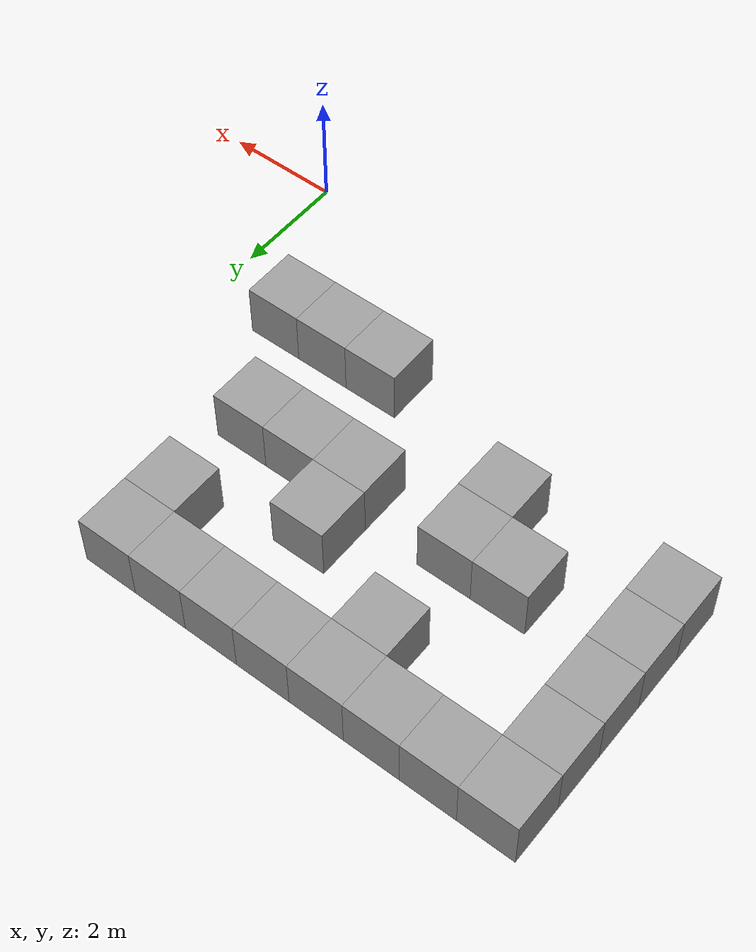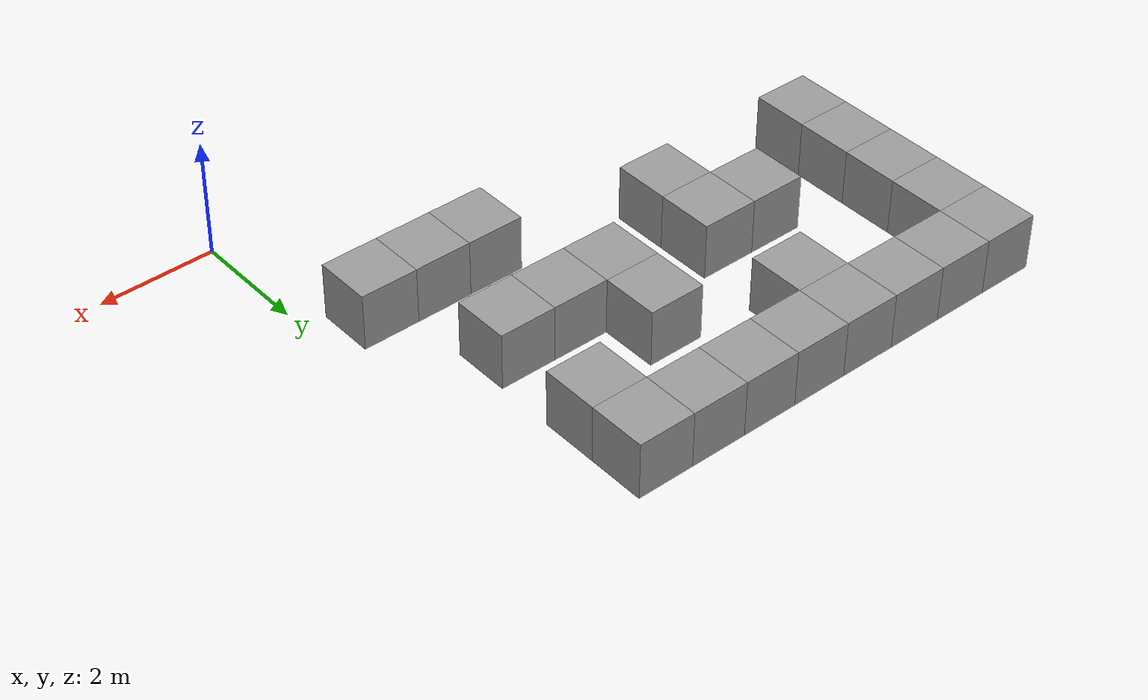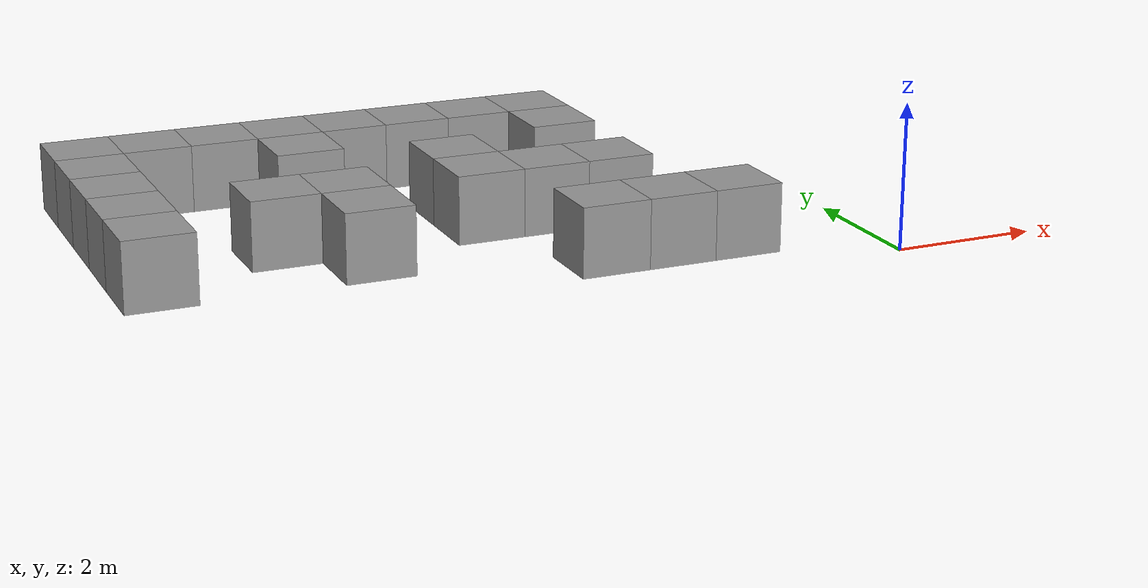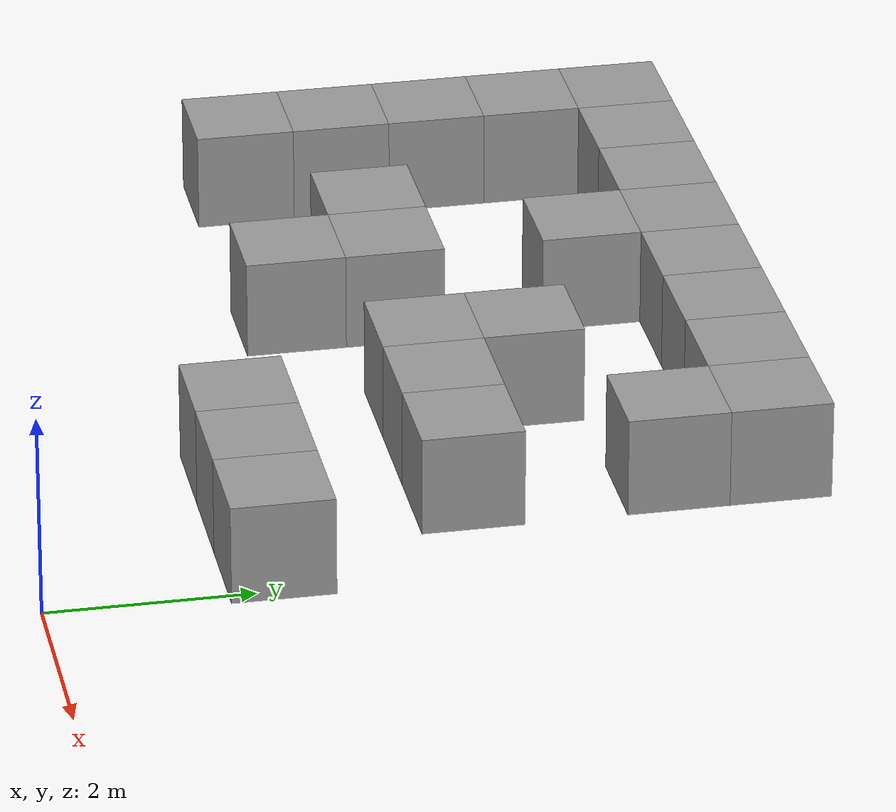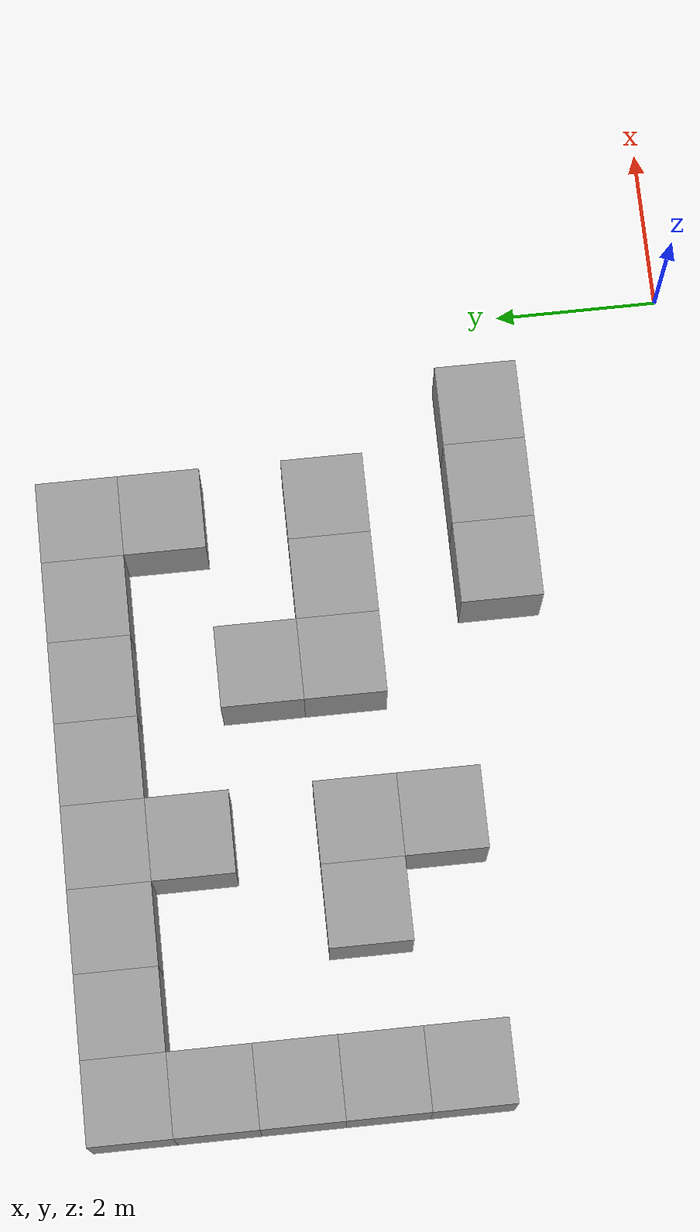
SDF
<sdf version="1.7">
 <model name="maze1">
  <link name="link_1_clone_10">
   <inertial>
    <mass>1</mass>
    <inertia>
     <ixx>0.166667</ixx>
     <ixy>0</ixy>
     <ixz>0</ixz>
     <iyy>0.166667</iyy>
     <iyz>0</iyz>
     <izz>0.166667</izz>
    </inertia>
   </inertial>
   <pose>-2.24618 7.37465 0 0 -0 0</pose>
   <visual name="visual">
    <geometry><box><size>1 1 1</size></box></geometry>
    <material>
     <lighting>1</lighting>
     <script><uri>file://media/materials/scripts/gazebo.material</uri><name>Gazebo/Grey</name></script>
     <shader type="pixel"><normal_map>__default__</normal_map></shader>
     <ambient>0.3 0.3 0.3 1</ambient>
     <diffuse>0.7 0.7 0.7 1</diffuse>
     <specular>0.01 0.01 0.01 1</specular>
     <emissive>0 0 0 1</emissive>
    </material>
   </visual>
   <collision name="collision">
    <geometry><box><size>1 1 1</size></box></geometry>
    <surface>
     <friction>
      <ode><mu>1</mu><mu2>1</mu2><fdir1>0 0 0</fdir1><slip1>0</slip1><slip2>0</slip2></ode>
      <torsional>
       <coefficient>1</coefficient>
       <patch_radius>0</patch_radius>
       <surface_radius>0</surface_radius>
       <use_patch_radius>1</use_patch_radius>
       <ode><slip>0</slip></ode>
      </torsional>
     </friction>
     <bounce><restitution_coefficient>0</restitution_coefficient><threshold>1e+06</threshold></bounce>
     <contact>
      <collide_without_contact>0</collide_without_contact>
      <collide_without_contact_bitmask>1</collide_without_contact_bitmask>
      <collide_bitmask>1</collide_bitmask>
      <ode>
       <soft_cfm>0</soft_cfm>
       <soft_erp>0.2</soft_erp>
       <kp>1e+13</kp>
       <kd>1</kd>
       <max_vel>0.01</max_vel>
       <min_depth>0</min_depth>
      </ode>
      <bullet>
       <split_impulse>1</split_impulse>
       <split_impulse_penetration_threshold>-0.01</split_impulse_penetration_threshold>
       <soft_cfm>0</soft_cfm>
       <soft_erp>0.2</soft_erp>
       <kp>1e+13</kp>
       <kd>1</kd>
      </bullet>
     </contact>
    </surface>
   </collision>
  </link>
  <link name="link_1_clone_100">
   <inertial>
    <mass>1</mass>
    <inertia>
     <ixx>0.166667</ixx>
     <ixy>0</ixy>
     <ixz>0</ixz>
     <iyy>0.166667</iyy>
     <iyz>0</iyz>
     <izz>0.166667</izz>
    </inertia>
   </inertial>
   <pose>-6.24618 4.37465 -0 0 -0 0</pose>
   <visual name="visual">
    <geometry><box><size>1 1 1</size></box></geometry>
    <material>
     <lighting>1</lighting>
     <script><uri>file://media/materials/scripts/gazebo.material</uri><name>Gazebo/Grey</name></script>
     <shader type="pixel"><normal_map>__default__</normal_map></shader>
     <ambient>0.3 0.3 0.3 1</ambient>
     <diffuse>0.7 0.7 0.7 1</diffuse>
     <specular>0.01 0.01 0.01 1</specular>
     <emissive>0 0 0 1</emissive>
    </material>
   </visual>
   <collision name="collision">
    <geometry><box><size>1 1 1</size></box></geometry>
    <surface>
     <friction>
      <ode><mu>1</mu><mu2>1</mu2><fdir1>0 0 0</fdir1><slip1>0</slip1><slip2>0</slip2></ode>
      <torsional>
       <coefficient>1</coefficient>
       <patch_radius>0</patch_radius>
       <surface_radius>0</surface_radius>
       <use_patch_radius>1</use_patch_radius>
       <ode><slip>0</slip></ode>
      </torsional>
     </friction>
     <bounce><restitution_coefficient>0</restitution_coefficient><threshold>1e+06</threshold></bounce>
     <contact>
      <collide_without_contact>0</collide_without_contact>
      <collide_without_contact_bitmask>1</collide_without_contact_bitmask>
      <collide_bitmask>1</collide_bitmask>
      <ode>
       <soft_cfm>0</soft_cfm>
       <soft_erp>0.2</soft_erp>
       <kp>1e+13</kp>
       <kd>1</kd>
       <max_vel>0.01</max_vel>
       <min_depth>0</min_depth>
      </ode>
      <bullet>
       <split_impulse>1</split_impulse>
       <split_impulse_penetration_threshold>-0.01</split_impulse_penetration_threshold>
       <soft_cfm>0</soft_cfm>
       <soft_erp>0.2</soft_erp>
       <kp>1e+13</kp>
       <kd>1</kd>
      </bullet>
     </contact>
    </surface>
   </collision>
  </link>
  <link name="link_1_clone_101">
   <inertial>
    <mass>1</mass>
    <inertia>
     <ixx>0.166667</ixx>
     <ixy>0</ixy>
     <ixz>0</ixz>
     <iyy>0.166667</iyy>
     <iyz>0</iyz>
     <izz>0.166667</izz>
    </inertia>
   </inertial>
   <pose>-6.24618 3.37465 -0 0 -0 0</pose>
   <visual name="visual">
    <geometry><box><size>1 1 1</size></box></geometry>
    <material>
     <lighting>1</lighting>
     <script><uri>file://media/materials/scripts/gazebo.material</uri><name>Gazebo/Grey</name></script>
     <shader type="pixel"><normal_map>__default__</normal_map></shader>
     <ambient>0.3 0.3 0.3 1</ambient>
     <diffuse>0.7 0.7 0.7 1</diffuse>
     <specular>0.01 0.01 0.01 1</specular>
     <emissive>0 0 0 1</emissive>
    </material>
   </visual>
   <collision name="collision">
    <geometry><box><size>1 1 1</size></box></geometry>
    <surface>
     <friction>
      <ode><mu>1</mu><mu2>1</mu2><fdir1>0 0 0</fdir1><slip1>0</slip1><slip2>0</slip2></ode>
      <torsional>
       <coefficient>1</coefficient>
       <patch_radius>0</patch_radius>
       <surface_radius>0</surface_radius>
       <use_patch_radius>1</use_patch_radius>
       <ode><slip>0</slip></ode>
      </torsional>
     </friction>
     <bounce><restitution_coefficient>0</restitution_coefficient><threshold>1e+06</threshold></bounce>
     <contact>
      <collide_without_contact>0</collide_without_contact>
      <collide_without_contact_bitmask>1</collide_without_contact_bitmask>
      <collide_bitmask>1</collide_bitmask>
      <ode>
       <soft_cfm>0</soft_cfm>
       <soft_erp>0.2</soft_erp>
       <kp>1e+13</kp>
       <kd>1</kd>
       <max_vel>0.01</max_vel>
       <min_depth>0</min_depth>
      </ode>
      <bullet>
       <split_impulse>1</split_impulse>
       <split_impulse_penetration_threshold>-0.01</split_impulse_penetration_threshold>
       <soft_cfm>0</soft_cfm>
       <soft_erp>0.2</soft_erp>
       <kp>1e+13</kp>
       <kd>1</kd>
      </bullet>
     </contact>
    </surface>
   </collision>
  </link>
  <link name="link_1_clone_102">
   <inertial>
    <mass>1</mass>
    <inertia>
     <ixx>0.166667</ixx>
     <ixy>0</ixy>
     <ixz>0</ixz>
     <iyy>0.166667</iyy>
     <iyz>0</iyz>
     <izz>0.166667</izz>
    </inertia>
   </inertial>
   <pose>-2.24618 2.37465 -0 0 -0 0</pose>
   <visual name="visual">
    <geometry><box><size>1 1 1</size></box></geometry>
    <material>
     <lighting>1</lighting>
     <script><uri>file://media/materials/scripts/gazebo.material</uri><name>Gazebo/Grey</name></script>
     <shader type="pixel"><normal_map>__default__</normal_map></shader>
     <ambient>0.3 0.3 0.3 1</ambient>
     <diffuse>0.7 0.7 0.7 1</diffuse>
     <specular>0.01 0.01 0.01 1</specular>
     <emissive>0 0 0 1</emissive>
    </material>
   </visual>
   <collision name="collision">
    <geometry><box><size>1 1 1</size></box></geometry>
    <surface>
     <friction>
      <ode><mu>1</mu><mu2>1</mu2><fdir1>0 0 0</fdir1><slip1>0</slip1><slip2>0</slip2></ode>
      <torsional>
       <coefficient>1</coefficient>
       <patch_radius>0</patch_radius>
       <surface_radius>0</surface_radius>
       <use_patch_radius>1</use_patch_radius>
       <ode><slip>0</slip></ode>
      </torsional>
     </friction>
     <bounce><restitution_coefficient>0</restitution_coefficient><threshold>1e+06</threshold></bounce>
     <contact>
      <collide_without_contact>0</collide_without_contact>
      <collide_without_contact_bitmask>1</collide_without_contact_bitmask>
      <collide_bitmask>1</collide_bitmask>
      <ode>
       <soft_cfm>0</soft_cfm>
       <soft_erp>0.2</soft_erp>
       <kp>1e+13</kp>
       <kd>1</kd>
       <max_vel>0.01</max_vel>
       <min_depth>0</min_depth>
      </ode>
      <bullet>
       <split_impulse>1</split_impulse>
       <split_impulse_penetration_threshold>-0.01</split_impulse_penetration_threshold>
       <soft_cfm>0</soft_cfm>
       <soft_erp>0.2</soft_erp>
       <kp>1e+13</kp>
       <kd>1</kd>
      </bullet>
     </contact>
    </surface>
   </collision>
  </link>
  <link name="link_1_clone_103">
   <inertial>
    <mass>1</mass>
    <inertia>
     <ixx>0.166667</ixx>
     <ixy>0</ixy>
     <ixz>0</ixz>
     <iyy>0.166667</iyy>
     <iyz>0</iyz>
     <izz>0.166667</izz>
    </inertia>
   </inertial>
   <pose>-1.24618 2.37465 -0 0 -0 0</pose>
   <visual name="visual">
    <geometry><box><size>1 1 1</size></box></geometry>
    <material>
     <lighting>1</lighting>
     <script><uri>file://media/materials/scripts/gazebo.material</uri><name>Gazebo/Grey</name></script>
     <shader type="pixel"><normal_map>__default__</normal_map></shader>
     <ambient>0.3 0.3 0.3 1</ambient>
     <diffuse>0.7 0.7 0.7 1</diffuse>
     <specular>0.01 0.01 0.01 1</specular>
     <emissive>0 0 0 1</emissive>
    </material>
   </visual>
   <collision name="collision">
    <geometry><box><size>1 1 1</size></box></geometry>
    <surface>
     <friction>
      <ode><mu>1</mu><mu2>1</mu2><fdir1>0 0 0</fdir1><slip1>0</slip1><slip2>0</slip2></ode>
      <torsional>
       <coefficient>1</coefficient>
       <patch_radius>0</patch_radius>
       <surface_radius>0</surface_radius>
       <use_patch_radius>1</use_patch_radius>
       <ode><slip>0</slip></ode>
      </torsional>
     </friction>
     <bounce><restitution_coefficient>0</restitution_coefficient><threshold>1e+06</threshold></bounce>
     <contact>
      <collide_without_contact>0</collide_without_contact>
      <collide_without_contact_bitmask>1</collide_without_contact_bitmask>
      <collide_bitmask>1</collide_bitmask>
      <ode>
       <soft_cfm>0</soft_cfm>
       <soft_erp>0.2</soft_erp>
       <kp>1e+13</kp>
       <kd>1</kd>
       <max_vel>0.01</max_vel>
       <min_depth>0</min_depth>
      </ode>
      <bullet>
       <split_impulse>1</split_impulse>
       <split_impulse_penetration_threshold>-0.01</split_impulse_penetration_threshold>
       <soft_cfm>0</soft_cfm>
       <soft_erp>0.2</soft_erp>
       <kp>1e+13</kp>
       <kd>1</kd>
      </bullet>
     </contact>
    </surface>
   </collision>
  </link>
  <link name="link_1_clone_11">
   <inertial>
    <mass>1</mass>
    <inertia>
     <ixx>0.166667</ixx>
     <ixy>0</ixy>
     <ixz>0</ixz>
     <iyy>0.166667</iyy>
     <iyz>0</iyz>
     <izz>0.166667</izz>
    </inertia>
   </inertial>
   <pose>-3.24618 7.37465 -0 0 -0 0</pose>
   <visual name="visual">
    <geometry><box><size>1 1 1</size></box></geometry>
    <material>
     <lighting>1</lighting>
     <script><uri>file://media/materials/scripts/gazebo.material</uri><name>Gazebo/Grey</name></script>
     <shader type="pixel"><normal_map>__default__</normal_map></shader>
     <ambient>0.3 0.3 0.3 1</ambient>
     <diffuse>0.7 0.7 0.7 1</diffuse>
     <specular>0.01 0.01 0.01 1</specular>
     <emissive>0 0 0 1</emissive>
    </material>
   </visual>
   <collision name="collision">
    <geometry><box><size>1 1 1</size></box></geometry>
    <surface>
     <friction>
      <ode><mu>1</mu><mu2>1</mu2><fdir1>0 0 0</fdir1><slip1>0</slip1><slip2>0</slip2></ode>
      <torsional>
       <coefficient>1</coefficient>
       <patch_radius>0</patch_radius>
       <surface_radius>0</surface_radius>
       <use_patch_radius>1</use_patch_radius>
       <ode><slip>0</slip></ode>
      </torsional>
     </friction>
     <bounce><restitution_coefficient>0</restitution_coefficient><threshold>1e+06</threshold></bounce>
     <contact>
      <collide_without_contact>0</collide_without_contact>
      <collide_without_contact_bitmask>1</collide_without_contact_bitmask>
      <collide_bitmask>1</collide_bitmask>
      <ode>
       <soft_cfm>0</soft_cfm>
       <soft_erp>0.2</soft_erp>
       <kp>1e+13</kp>
       <kd>1</kd>
       <max_vel>0.01</max_vel>
       <min_depth>0</min_depth>
      </ode>
      <bullet>
       <split_impulse>1</split_impulse>
       <split_impulse_penetration_threshold>-0.01</split_impulse_penetration_threshold>
       <soft_cfm>0</soft_cfm>
       <soft_erp>0.2</soft_erp>
       <kp>1e+13</kp>
       <kd>1</kd>
      </bullet>
     </contact>
    </surface>
   </collision>
  </link>
  <link name="link_1_clone_114">
   <inertial>
    <mass>1</mass>
    <inertia>
     <ixx>0.166667</ixx>
     <ixy>0</ixy>
     <ixz>0</ixz>
     <iyy>0.166667</iyy>
     <iyz>0</iyz>
     <izz>0.166667</izz>
    </inertia>
   </inertial>
   <pose>-3.24618 2.37465 -0 0 -0 0</pose>
   <visual name="visual">
    <geometry><box><size>1 1 1</size></box></geometry>
    <material>
     <lighting>1</lighting>
     <script><uri>file://media/materials/scripts/gazebo.material</uri><name>Gazebo/Grey</name></script>
     <shader type="pixel"><normal_map>__default__</normal_map></shader>
     <ambient>0.3 0.3 0.3 1</ambient>
     <diffuse>0.7 0.7 0.7 1</diffuse>
     <specular>0.01 0.01 0.01 1</specular>
     <emissive>0 0 0 1</emissive>
    </material>
   </visual>
   <collision name="collision">
    <geometry><box><size>1 1 1</size></box></geometry>
    <surface>
     <friction>
      <ode><mu>1</mu><mu2>1</mu2><fdir1>0 0 0</fdir1><slip1>0</slip1><slip2>0</slip2></ode>
      <torsional>
       <coefficient>1</coefficient>
       <patch_radius>0</patch_radius>
       <surface_radius>0</surface_radius>
       <use_patch_radius>1</use_patch_radius>
       <ode><slip>0</slip></ode>
      </torsional>
     </friction>
     <bounce><restitution_coefficient>0</restitution_coefficient><threshold>1e+06</threshold></bounce>
     <contact>
      <collide_without_contact>0</collide_without_contact>
      <collide_without_contact_bitmask>1</collide_without_contact_bitmask>
      <collide_bitmask>1</collide_bitmask>
      <ode>
       <soft_cfm>0</soft_cfm>
       <soft_erp>0.2</soft_erp>
       <kp>1e+13</kp>
       <kd>1</kd>
       <max_vel>0.01</max_vel>
       <min_depth>0</min_depth>
      </ode>
      <bullet>
       <split_impulse>1</split_impulse>
       <split_impulse_penetration_threshold>-0.01</split_impulse_penetration_threshold>
       <soft_cfm>0</soft_cfm>
       <soft_erp>0.2</soft_erp>
       <kp>1e+13</kp>
       <kd>1</kd>
      </bullet>
     </contact>
    </surface>
   </collision>
  </link>
  <link name="link_1_clone_12">
   <inertial>
    <mass>1</mass>
    <inertia>
     <ixx>0.166667</ixx>
     <ixy>0</ixy>
     <ixz>0</ixz>
     <iyy>0.166667</iyy>
     <iyz>0</iyz>
     <izz>0.166667</izz>
    </inertia>
   </inertial>
   <pose>-4.24618 7.37465 -0 0 -0 0</pose>
   <visual name="visual">
    <geometry><box><size>1 1 1</size></box></geometry>
    <material>
     <lighting>1</lighting>
     <script><uri>file://media/materials/scripts/gazebo.material</uri><name>Gazebo/Grey</name></script>
     <shader type="pixel"><normal_map>__default__</normal_map></shader>
     <ambient>0.3 0.3 0.3 1</ambient>
     <diffuse>0.7 0.7 0.7 1</diffuse>
     <specular>0.01 0.01 0.01 1</specular>
     <emissive>0 0 0 1</emissive>
    </material>
   </visual>
   <collision name="collision">
    <geometry><box><size>1 1 1</size></box></geometry>
    <surface>
     <friction>
      <ode><mu>1</mu><mu2>1</mu2><fdir1>0 0 0</fdir1><slip1>0</slip1><slip2>0</slip2></ode>
      <torsional>
       <coefficient>1</coefficient>
       <patch_radius>0</patch_radius>
       <surface_radius>0</surface_radius>
       <use_patch_radius>1</use_patch_radius>
       <ode><slip>0</slip></ode>
      </torsional>
     </friction>
     <bounce><restitution_coefficient>0</restitution_coefficient><threshold>1e+06</threshold></bounce>
     <contact>
      <collide_without_contact>0</collide_without_contact>
      <collide_without_contact_bitmask>1</collide_without_contact_bitmask>
      <collide_bitmask>1</collide_bitmask>
      <ode>
       <soft_cfm>0</soft_cfm>
       <soft_erp>0.2</soft_erp>
       <kp>1e+13</kp>
       <kd>1</kd>
       <max_vel>0.01</max_vel>
       <min_depth>0</min_depth>
      </ode>
      <bullet>
       <split_impulse>1</split_impulse>
       <split_impulse_penetration_threshold>-0.01</split_impulse_penetration_threshold>
       <soft_cfm>0</soft_cfm>
       <soft_erp>0.2</soft_erp>
       <kp>1e+13</kp>
       <kd>1</kd>
      </bullet>
     </contact>
    </surface>
   </collision>
  </link>
  <link name="link_1_clone_13">
   <inertial>
    <mass>1</mass>
    <inertia>
     <ixx>0.166667</ixx>
     <ixy>0</ixy>
     <ixz>0</ixz>
     <iyy>0.166667</iyy>
     <iyz>0</iyz>
     <izz>0.166667</izz>
    </inertia>
   </inertial>
   <pose>-5.24618 7.37465 -0 0 -0 0</pose>
   <visual name="visual">
    <geometry><box><size>1 1 1</size></box></geometry>
    <material>
     <lighting>1</lighting>
     <script><uri>file://media/materials/scripts/gazebo.material</uri><name>Gazebo/Grey</name></script>
     <shader type="pixel"><normal_map>__default__</normal_map></shader>
     <ambient>0.3 0.3 0.3 1</ambient>
     <diffuse>0.7 0.7 0.7 1</diffuse>
     <specular>0.01 0.01 0.01 1</specular>
     <emissive>0 0 0 1</emissive>
    </material>
   </visual>
   <collision name="collision">
    <geometry><box><size>1 1 1</size></box></geometry>
    <surface>
     <friction>
      <ode><mu>1</mu><mu2>1</mu2><fdir1>0 0 0</fdir1><slip1>0</slip1><slip2>0</slip2></ode>
      <torsional>
       <coefficient>1</coefficient>
       <patch_radius>0</patch_radius>
       <surface_radius>0</surface_radius>
       <use_patch_radius>1</use_patch_radius>
       <ode><slip>0</slip></ode>
      </torsional>
     </friction>
     <bounce><restitution_coefficient>0</restitution_coefficient><threshold>1e+06</threshold></bounce>
     <contact>
      <collide_without_contact>0</collide_without_contact>
      <collide_without_contact_bitmask>1</collide_without_contact_bitmask>
      <collide_bitmask>1</collide_bitmask>
      <ode>
       <soft_cfm>0</soft_cfm>
       <soft_erp>0.2</soft_erp>
       <kp>1e+13</kp>
       <kd>1</kd>
       <max_vel>0.01</max_vel>
       <min_depth>0</min_depth>
      </ode>
      <bullet>
       <split_impulse>1</split_impulse>
       <split_impulse_penetration_threshold>-0.01</split_impulse_penetration_threshold>
       <soft_cfm>0</soft_cfm>
       <soft_erp>0.2</soft_erp>
       <kp>1e+13</kp>
       <kd>1</kd>
      </bullet>
     </contact>
    </surface>
   </collision>
  </link>
  <link name="link_1_clone_14">
   <inertial>
    <mass>1</mass>
    <inertia>
     <ixx>0.166667</ixx>
     <ixy>0</ixy>
     <ixz>0</ixz>
     <iyy>0.166667</iyy>
     <iyz>0</iyz>
     <izz>0.166667</izz>
    </inertia>
   </inertial>
   <pose>-6.24618 7.37465 -0 0 -0 0</pose>
   <visual name="visual">
    <geometry><box><size>1 1 1</size></box></geometry>
    <material>
     <lighting>1</lighting>
     <script><uri>file://media/materials/scripts/gazebo.material</uri><name>Gazebo/Grey</name></script>
     <shader type="pixel"><normal_map>__default__</normal_map></shader>
     <ambient>0.3 0.3 0.3 1</ambient>
     <diffuse>0.7 0.7 0.7 1</diffuse>
     <specular>0.01 0.01 0.01 1</specular>
     <emissive>0 0 0 1</emissive>
    </material>
   </visual>
   <collision name="collision">
    <geometry><box><size>1 1 1</size></box></geometry>
    <surface>
     <friction>
      <ode><mu>1</mu><mu2>1</mu2><fdir1>0 0 0</fdir1><slip1>0</slip1><slip2>0</slip2></ode>
      <torsional>
       <coefficient>1</coefficient>
       <patch_radius>0</patch_radius>
       <surface_radius>0</surface_radius>
       <use_patch_radius>1</use_patch_radius>
       <ode><slip>0</slip></ode>
      </torsional>
     </friction>
     <bounce><restitution_coefficient>0</restitution_coefficient><threshold>1e+06</threshold></bounce>
     <contact>
      <collide_without_contact>0</collide_without_contact>
      <collide_without_contact_bitmask>1</collide_without_contact_bitmask>
      <collide_bitmask>1</collide_bitmask>
      <ode>
       <soft_cfm>0</soft_cfm>
       <soft_erp>0.2</soft_erp>
       <kp>1e+13</kp>
       <kd>1</kd>
       <max_vel>0.01</max_vel>
       <min_depth>0</min_depth>
      </ode>
      <bullet>
       <split_impulse>1</split_impulse>
       <split_impulse_penetration_threshold>-0.01</split_impulse_penetration_threshold>
       <soft_cfm>0</soft_cfm>
       <soft_erp>0.2</soft_erp>
       <kp>1e+13</kp>
       <kd>1</kd>
      </bullet>
     </contact>
    </surface>
   </collision>
  </link>
  <link name="link_1_clone_15">
   <inertial>
    <mass>1</mass>
    <inertia>
     <ixx>0.166667</ixx>
     <ixy>0</ixy>
     <ixz>0</ixz>
     <iyy>0.166667</iyy>
     <iyz>0</iyz>
     <izz>0.166667</izz>
    </inertia>
   </inertial>
   <pose>-7.24618 7.37465 -0 0 -0 0</pose>
   <visual name="visual">
    <geometry><box><size>1 1 1</size></box></geometry>
    <material>
     <lighting>1</lighting>
     <script><uri>file://media/materials/scripts/gazebo.material</uri><name>Gazebo/Grey</name></script>
     <shader type="pixel"><normal_map>__default__</normal_map></shader>
     <ambient>0.3 0.3 0.3 1</ambient>
     <diffuse>0.7 0.7 0.7 1</diffuse>
     <specular>0.01 0.01 0.01 1</specular>
     <emissive>0 0 0 1</emissive>
    </material>
   </visual>
   <collision name="collision">
    <geometry><box><size>1 1 1</size></box></geometry>
    <surface>
     <friction>
      <ode><mu>1</mu><mu2>1</mu2><fdir1>0 0 0</fdir1><slip1>0</slip1><slip2>0</slip2></ode>
      <torsional>
       <coefficient>1</coefficient>
       <patch_radius>0</patch_radius>
       <surface_radius>0</surface_radius>
       <use_patch_radius>1</use_patch_radius>
       <ode><slip>0</slip></ode>
      </torsional>
     </friction>
     <bounce><restitution_coefficient>0</restitution_coefficient><threshold>1e+06</threshold></bounce>
     <contact>
      <collide_without_contact>0</collide_without_contact>
      <collide_without_contact_bitmask>1</collide_without_contact_bitmask>
      <collide_bitmask>1</collide_bitmask>
      <ode>
       <soft_cfm>0</soft_cfm>
       <soft_erp>0.2</soft_erp>
       <kp>1e+13</kp>
       <kd>1</kd>
       <max_vel>0.01</max_vel>
       <min_depth>0</min_depth>
      </ode>
      <bullet>
       <split_impulse>1</split_impulse>
       <split_impulse_penetration_threshold>-0.01</split_impulse_penetration_threshold>
       <soft_cfm>0</soft_cfm>
       <soft_erp>0.2</soft_erp>
       <kp>1e+13</kp>
       <kd>1</kd>
      </bullet>
     </contact>
    </surface>
   </collision>
  </link>
  <link name="link_1_clone_16">
   <inertial>
    <mass>1</mass>
    <inertia>
     <ixx>0.166667</ixx>
     <ixy>0</ixy>
     <ixz>0</ixz>
     <iyy>0.166667</iyy>
     <iyz>0</iyz>
     <izz>0.166667</izz>
    </inertia>
   </inertial>
   <pose>-8.24618 7.37465 -0 0 -0 0</pose>
   <visual name="visual">
    <geometry><box><size>1 1 1</size></box></geometry>
    <material>
     <lighting>1</lighting>
     <script><uri>file://media/materials/scripts/gazebo.material</uri><name>Gazebo/Grey</name></script>
     <shader type="pixel"><normal_map>__default__</normal_map></shader>
     <ambient>0.3 0.3 0.3 1</ambient>
     <diffuse>0.7 0.7 0.7 1</diffuse>
     <specular>0.01 0.01 0.01 1</specular>
     <emissive>0 0 0 1</emissive>
    </material>
   </visual>
   <collision name="collision">
    <geometry><box><size>1 1 1</size></box></geometry>
    <surface>
     <friction>
      <ode><mu>1</mu><mu2>1</mu2><fdir1>0 0 0</fdir1><slip1>0</slip1><slip2>0</slip2></ode>
      <torsional>
       <coefficient>1</coefficient>
       <patch_radius>0</patch_radius>
       <surface_radius>0</surface_radius>
       <use_patch_radius>1</use_patch_radius>
       <ode><slip>0</slip></ode>
      </torsional>
     </friction>
     <bounce><restitution_coefficient>0</restitution_coefficient><threshold>1e+06</threshold></bounce>
     <contact>
      <collide_without_contact>0</collide_without_contact>
      <collide_without_contact_bitmask>1</collide_without_contact_bitmask>
      <collide_bitmask>1</collide_bitmask>
      <ode>
       <soft_cfm>0</soft_cfm>
       <soft_erp>0.2</soft_erp>
       <kp>1e+13</kp>
       <kd>1</kd>
       <max_vel>0.01</max_vel>
       <min_depth>0</min_depth>
      </ode>
      <bullet>
       <split_impulse>1</split_impulse>
       <split_impulse_penetration_threshold>-0.01</split_impulse_penetration_threshold>
       <soft_cfm>0</soft_cfm>
       <soft_erp>0.2</soft_erp>
       <kp>1e+13</kp>
       <kd>1</kd>
      </bullet>
     </contact>
    </surface>
   </collision>
  </link>
  <link name="link_1_clone_17">
   <inertial>
    <mass>1</mass>
    <inertia>
     <ixx>0.166667</ixx>
     <ixy>0</ixy>
     <ixz>0</ixz>
     <iyy>0.166667</iyy>
     <iyz>0</iyz>
     <izz>0.166667</izz>
    </inertia>
   </inertial>
   <pose>-9.24618 7.37465 -0 0 -0 0</pose>
   <visual name="visual">
    <geometry><box><size>1 1 1</size></box></geometry>
    <material>
     <lighting>1</lighting>
     <script><uri>file://media/materials/scripts/gazebo.material</uri><name>Gazebo/Grey</name></script>
     <shader type="pixel"><normal_map>__default__</normal_map></shader>
     <ambient>0.3 0.3 0.3 1</ambient>
     <diffuse>0.7 0.7 0.7 1</diffuse>
     <specular>0.01 0.01 0.01 1</specular>
     <emissive>0 0 0 1</emissive>
    </material>
   </visual>
   <collision name="collision">
    <geometry><box><size>1 1 1</size></box></geometry>
    <surface>
     <friction>
      <ode><mu>1</mu><mu2>1</mu2><fdir1>0 0 0</fdir1><slip1>0</slip1><slip2>0</slip2></ode>
      <torsional>
       <coefficient>1</coefficient>
       <patch_radius>0</patch_radius>
       <surface_radius>0</surface_radius>
       <use_patch_radius>1</use_patch_radius>
       <ode><slip>0</slip></ode>
      </torsional>
     </friction>
     <bounce><restitution_coefficient>0</restitution_coefficient><threshold>1e+06</threshold></bounce>
     <contact>
      <collide_without_contact>0</collide_without_contact>
      <collide_without_contact_bitmask>1</collide_without_contact_bitmask>
      <collide_bitmask>1</collide_bitmask>
      <ode>
       <soft_cfm>0</soft_cfm>
       <soft_erp>0.2</soft_erp>
       <kp>1e+13</kp>
       <kd>1</kd>
       <max_vel>0.01</max_vel>
       <min_depth>0</min_depth>
      </ode>
      <bullet>
       <split_impulse>1</split_impulse>
       <split_impulse_penetration_threshold>-0.01</split_impulse_penetration_threshold>
       <soft_cfm>0</soft_cfm>
       <soft_erp>0.2</soft_erp>
       <kp>1e+13</kp>
       <kd>1</kd>
      </bullet>
     </contact>
    </surface>
   </collision>
  </link>
  <link name="link_1_clone_18">
   <inertial>
    <mass>1</mass>
    <inertia>
     <ixx>0.166667</ixx>
     <ixy>0</ixy>
     <ixz>0</ixz>
     <iyy>0.166667</iyy>
     <iyz>0</iyz>
     <izz>0.166667</izz>
    </inertia>
   </inertial>
   <pose>-9.24618 6.37465 -0 0 -0 0</pose>
   <visual name="visual">
    <geometry><box><size>1 1 1</size></box></geometry>
    <material>
     <lighting>1</lighting>
     <script><uri>file://media/materials/scripts/gazebo.material</uri><name>Gazebo/Grey</name></script>
     <shader type="pixel"><normal_map>__default__</normal_map></shader>
     <ambient>0.3 0.3 0.3 1</ambient>
     <diffuse>0.7 0.7 0.7 1</diffuse>
     <specular>0.01 0.01 0.01 1</specular>
     <emissive>0 0 0 1</emissive>
    </material>
   </visual>
   <collision name="collision">
    <geometry><box><size>1 1 1</size></box></geometry>
    <surface>
     <friction>
      <ode><mu>1</mu><mu2>1</mu2><fdir1>0 0 0</fdir1><slip1>0</slip1><slip2>0</slip2></ode>
      <torsional>
       <coefficient>1</coefficient>
       <patch_radius>0</patch_radius>
       <surface_radius>0</surface_radius>
       <use_patch_radius>1</use_patch_radius>
       <ode><slip>0</slip></ode>
      </torsional>
     </friction>
     <bounce><restitution_coefficient>0</restitution_coefficient><threshold>1e+06</threshold></bounce>
     <contact>
      <collide_without_contact>0</collide_without_contact>
      <collide_without_contact_bitmask>1</collide_without_contact_bitmask>
      <collide_bitmask>1</collide_bitmask>
      <ode>
       <soft_cfm>0</soft_cfm>
       <soft_erp>0.2</soft_erp>
       <kp>1e+13</kp>
       <kd>1</kd>
       <max_vel>0.01</max_vel>
       <min_depth>0</min_depth>
      </ode>
      <bullet>
       <split_impulse>1</split_impulse>
       <split_impulse_penetration_threshold>-0.01</split_impulse_penetration_threshold>
       <soft_cfm>0</soft_cfm>
       <soft_erp>0.2</soft_erp>
       <kp>1e+13</kp>
       <kd>1</kd>
      </bullet>
     </contact>
    </surface>
   </collision>
  </link>
  <link name="link_1_clone_19">
   <inertial>
    <mass>1</mass>
    <inertia>
     <ixx>0.166667</ixx>
     <ixy>0</ixy>
     <ixz>0</ixz>
     <iyy>0.166667</iyy>
     <iyz>0</iyz>
     <izz>0.166667</izz>
    </inertia>
   </inertial>
   <pose>-9.24618 5.37465 -0 0 -0 0</pose>
   <visual name="visual">
    <geometry><box><size>1 1 1</size></box></geometry>
    <material>
     <lighting>1</lighting>
     <script><uri>file://media/materials/scripts/gazebo.material</uri><name>Gazebo/Grey</name></script>
     <shader type="pixel"><normal_map>__default__</normal_map></shader>
     <ambient>0.3 0.3 0.3 1</ambient>
     <diffuse>0.7 0.7 0.7 1</diffuse>
     <specular>0.01 0.01 0.01 1</specular>
     <emissive>0 0 0 1</emissive>
    </material>
   </visual>
   <collision name="collision">
    <geometry><box><size>1 1 1</size></box></geometry>
    <surface>
     <friction>
      <ode><mu>1</mu><mu2>1</mu2><fdir1>0 0 0</fdir1><slip1>0</slip1><slip2>0</slip2></ode>
      <torsional>
       <coefficient>1</coefficient>
       <patch_radius>0</patch_radius>
       <surface_radius>0</surface_radius>
       <use_patch_radius>1</use_patch_radius>
       <ode><slip>0</slip></ode>
      </torsional>
     </friction>
     <bounce><restitution_coefficient>0</restitution_coefficient><threshold>1e+06</threshold></bounce>
     <contact>
      <collide_without_contact>0</collide_without_contact>
      <collide_without_contact_bitmask>1</collide_without_contact_bitmask>
      <collide_bitmask>1</collide_bitmask>
      <ode>
       <soft_cfm>0</soft_cfm>
       <soft_erp>0.2</soft_erp>
       <kp>1e+13</kp>
       <kd>1</kd>
       <max_vel>0.01</max_vel>
       <min_depth>0</min_depth>
      </ode>
      <bullet>
       <split_impulse>1</split_impulse>
       <split_impulse_penetration_threshold>-0.01</split_impulse_penetration_threshold>
       <soft_cfm>0</soft_cfm>
       <soft_erp>0.2</soft_erp>
       <kp>1e+13</kp>
       <kd>1</kd>
      </bullet>
     </contact>
    </surface>
   </collision>
  </link>
  <link name="link_1_clone_20">
   <inertial>
    <mass>1</mass>
    <inertia>
     <ixx>0.166667</ixx>
     <ixy>0</ixy>
     <ixz>0</ixz>
     <iyy>0.166667</iyy>
     <iyz>0</iyz>
     <izz>0.166667</izz>
    </inertia>
   </inertial>
   <pose>-9.24618 4.37465 -0 0 -0 0</pose>
   <visual name="visual">
    <geometry><box><size>1 1 1</size></box></geometry>
    <material>
     <lighting>1</lighting>
     <script><uri>file://media/materials/scripts/gazebo.material</uri><name>Gazebo/Grey</name></script>
     <shader type="pixel"><normal_map>__default__</normal_map></shader>
     <ambient>0.3 0.3 0.3 1</ambient>
     <diffuse>0.7 0.7 0.7 1</diffuse>
     <specular>0.01 0.01 0.01 1</specular>
     <emissive>0 0 0 1</emissive>
    </material>
   </visual>
   <collision name="collision">
    <geometry><box><size>1 1 1</size></box></geometry>
    <surface>
     <friction>
      <ode><mu>1</mu><mu2>1</mu2><fdir1>0 0 0</fdir1><slip1>0</slip1><slip2>0</slip2></ode>
      <torsional>
       <coefficient>1</coefficient>
       <patch_radius>0</patch_radius>
       <surface_radius>0</surface_radius>
       <use_patch_radius>1</use_patch_radius>
       <ode><slip>0</slip></ode>
      </torsional>
     </friction>
     <bounce><restitution_coefficient>0</restitution_coefficient><threshold>1e+06</threshold></bounce>
     <contact>
      <collide_without_contact>0</collide_without_contact>
      <collide_without_contact_bitmask>1</collide_without_contact_bitmask>
      <collide_bitmask>1</collide_bitmask>
      <ode>
       <soft_cfm>0</soft_cfm>
       <soft_erp>0.2</soft_erp>
       <kp>1e+13</kp>
       <kd>1</kd>
       <max_vel>0.01</max_vel>
       <min_depth>0</min_depth>
      </ode>
      <bullet>
       <split_impulse>1</split_impulse>
       <split_impulse_penetration_threshold>-0.01</split_impulse_penetration_threshold>
       <soft_cfm>0</soft_cfm>
       <soft_erp>0.2</soft_erp>
       <kp>1e+13</kp>
       <kd>1</kd>
      </bullet>
     </contact>
    </surface>
   </collision>
  </link>
  <link name="link_1_clone_21">
   <inertial>
    <mass>1</mass>
    <inertia>
     <ixx>0.166667</ixx>
     <ixy>0</ixy>
     <ixz>0</ixz>
     <iyy>0.166667</iyy>
     <iyz>0</iyz>
     <izz>0.166667</izz>
    </inertia>
   </inertial>
   <pose>-9.24618 3.37465 -0 0 -0 0</pose>
   <visual name="visual">
    <geometry><box><size>1 1 1</size></box></geometry>
    <material>
     <lighting>1</lighting>
     <script><uri>file://media/materials/scripts/gazebo.material</uri><name>Gazebo/Grey</name></script>
     <shader type="pixel"><normal_map>__default__</normal_map></shader>
     <ambient>0.3 0.3 0.3 1</ambient>
     <diffuse>0.7 0.7 0.7 1</diffuse>
     <specular>0.01 0.01 0.01 1</specular>
     <emissive>0 0 0 1</emissive>
    </material>
   </visual>
   <collision name="collision">
    <geometry><box><size>1 1 1</size></box></geometry>
    <surface>
     <friction>
      <ode><mu>1</mu><mu2>1</mu2><fdir1>0 0 0</fdir1><slip1>0</slip1><slip2>0</slip2></ode>
      <torsional>
       <coefficient>1</coefficient>
       <patch_radius>0</patch_radius>
       <surface_radius>0</surface_radius>
       <use_patch_radius>1</use_patch_radius>
       <ode><slip>0</slip></ode>
      </torsional>
     </friction>
     <bounce><restitution_coefficient>0</restitution_coefficient><threshold>1e+06</threshold></bounce>
     <contact>
      <collide_without_contact>0</collide_without_contact>
      <collide_without_contact_bitmask>1</collide_without_contact_bitmask>
      <collide_bitmask>1</collide_bitmask>
      <ode>
       <soft_cfm>0</soft_cfm>
       <soft_erp>0.2</soft_erp>
       <kp>1e+13</kp>
       <kd>1</kd>
       <max_vel>0.01</max_vel>
       <min_depth>0</min_depth>
      </ode>
      <bullet>
       <split_impulse>1</split_impulse>
       <split_impulse_penetration_threshold>-0.01</split_impulse_penetration_threshold>
       <soft_cfm>0</soft_cfm>
       <soft_erp>0.2</soft_erp>
       <kp>1e+13</kp>
       <kd>1</kd>
      </bullet>
     </contact>
    </surface>
   </collision>
  </link>
  <link name="link_1_clone_93">
   <inertial>
    <mass>1</mass>
    <inertia>
     <ixx>0.166667</ixx>
     <ixy>0</ixy>
     <ixz>0</ixz>
     <iyy>0.166667</iyy>
     <iyz>0</iyz>
     <izz>0.166667</izz>
    </inertia>
   </inertial>
   <pose>-2.24618 4.37465 -0 0 -0 0</pose>
   <visual name="visual">
    <geometry><box><size>1 1 1</size></box></geometry>
    <material>
     <lighting>1</lighting>
     <script><uri>file://media/materials/scripts/gazebo.material</uri><name>Gazebo/Grey</name></script>
     <shader type="pixel"><normal_map>__default__</normal_map></shader>
     <ambient>0.3 0.3 0.3 1</ambient>
     <diffuse>0.7 0.7 0.7 1</diffuse>
     <specular>0.01 0.01 0.01 1</specular>
     <emissive>0 0 0 1</emissive>
    </material>
   </visual>
   <collision name="collision">
    <geometry><box><size>1 1 1</size></box></geometry>
    <surface>
     <friction>
      <ode><mu>1</mu><mu2>1</mu2><fdir1>0 0 0</fdir1><slip1>0</slip1><slip2>0</slip2></ode>
      <torsional>
       <coefficient>1</coefficient>
       <patch_radius>0</patch_radius>
       <surface_radius>0</surface_radius>
       <use_patch_radius>1</use_patch_radius>
       <ode><slip>0</slip></ode>
      </torsional>
     </friction>
     <bounce><restitution_coefficient>0</restitution_coefficient><threshold>1e+06</threshold></bounce>
     <contact>
      <collide_without_contact>0</collide_without_contact>
      <collide_without_contact_bitmask>1</collide_without_contact_bitmask>
      <collide_bitmask>1</collide_bitmask>
      <ode>
       <soft_cfm>0</soft_cfm>
       <soft_erp>0.2</soft_erp>
       <kp>1e+13</kp>
       <kd>1</kd>
       <max_vel>0.01</max_vel>
       <min_depth>0</min_depth>
      </ode>
      <bullet>
       <split_impulse>1</split_impulse>
       <split_impulse_penetration_threshold>-0.01</split_impulse_penetration_threshold>
       <soft_cfm>0</soft_cfm>
       <soft_erp>0.2</soft_erp>
       <kp>1e+13</kp>
       <kd>1</kd>
      </bullet>
     </contact>
    </surface>
   </collision>
  </link>
  <link name="link_1_clone_94">
   <inertial>
    <mass>1</mass>
    <inertia>
     <ixx>0.166667</ixx>
     <ixy>0</ixy>
     <ixz>0</ixz>
     <iyy>0.166667</iyy>
     <iyz>0</iyz>
     <izz>0.166667</izz>
    </inertia>
   </inertial>
   <pose>-3.24618 4.37465 -0 0 -0 0</pose>
   <visual name="visual">
    <geometry><box><size>1 1 1</size></box></geometry>
    <material>
     <lighting>1</lighting>
     <script><uri>file://media/materials/scripts/gazebo.material</uri><name>Gazebo/Grey</name></script>
     <shader type="pixel"><normal_map>__default__</normal_map></shader>
     <ambient>0.3 0.3 0.3 1</ambient>
     <diffuse>0.7 0.7 0.7 1</diffuse>
     <specular>0.01 0.01 0.01 1</specular>
     <emissive>0 0 0 1</emissive>
    </material>
   </visual>
   <collision name="collision">
    <geometry><box><size>1 1 1</size></box></geometry>
    <surface>
     <friction>
      <ode><mu>1</mu><mu2>1</mu2><fdir1>0 0 0</fdir1><slip1>0</slip1><slip2>0</slip2></ode>
      <torsional>
       <coefficient>1</coefficient>
       <patch_radius>0</patch_radius>
       <surface_radius>0</surface_radius>
       <use_patch_radius>1</use_patch_radius>
       <ode><slip>0</slip></ode>
      </torsional>
     </friction>
     <bounce><restitution_coefficient>0</restitution_coefficient><threshold>1e+06</threshold></bounce>
     <contact>
      <collide_without_contact>0</collide_without_contact>
      <collide_without_contact_bitmask>1</collide_without_contact_bitmask>
      <collide_bitmask>1</collide_bitmask>
      <ode>
       <soft_cfm>0</soft_cfm>
       <soft_erp>0.2</soft_erp>
       <kp>1e+13</kp>
       <kd>1</kd>
       <max_vel>0.01</max_vel>
       <min_depth>0</min_depth>
      </ode>
      <bullet>
       <split_impulse>1</split_impulse>
       <split_impulse_penetration_threshold>-0.01</split_impulse_penetration_threshold>
       <soft_cfm>0</soft_cfm>
       <soft_erp>0.2</soft_erp>
       <kp>1e+13</kp>
       <kd>1</kd>
      </bullet>
     </contact>
    </surface>
   </collision>
  </link>
  <link name="link_1_clone_95">
   <inertial>
    <mass>1</mass>
    <inertia>
     <ixx>0.166667</ixx>
     <ixy>0</ixy>
     <ixz>0</ixz>
     <iyy>0.166667</iyy>
     <iyz>0</iyz>
     <izz>0.166667</izz>
    </inertia>
   </inertial>
   <pose>-2.24618 6.37465 -0 0 -0 0</pose>
   <visual name="visual">
    <geometry><box><size>1 1 1</size></box></geometry>
    <material>
     <lighting>1</lighting>
     <script><uri>file://media/materials/scripts/gazebo.material</uri><name>Gazebo/Grey</name></script>
     <shader type="pixel"><normal_map>__default__</normal_map></shader>
     <ambient>0.3 0.3 0.3 1</ambient>
     <diffuse>0.7 0.7 0.7 1</diffuse>
     <specular>0.01 0.01 0.01 1</specular>
     <emissive>0 0 0 1</emissive>
    </material>
   </visual>
   <collision name="collision">
    <geometry><box><size>1 1 1</size></box></geometry>
    <surface>
     <friction>
      <ode><mu>1</mu><mu2>1</mu2><fdir1>0 0 0</fdir1><slip1>0</slip1><slip2>0</slip2></ode>
      <torsional>
       <coefficient>1</coefficient>
       <patch_radius>0</patch_radius>
       <surface_radius>0</surface_radius>
       <use_patch_radius>1</use_patch_radius>
       <ode><slip>0</slip></ode>
      </torsional>
     </friction>
     <bounce><restitution_coefficient>0</restitution_coefficient><threshold>1e+06</threshold></bounce>
     <contact>
      <collide_without_contact>0</collide_without_contact>
      <collide_without_contact_bitmask>1</collide_without_contact_bitmask>
      <collide_bitmask>1</collide_bitmask>
      <ode>
       <soft_cfm>0</soft_cfm>
       <soft_erp>0.2</soft_erp>
       <kp>1e+13</kp>
       <kd>1</kd>
       <max_vel>0.01</max_vel>
       <min_depth>0</min_depth>
      </ode>
      <bullet>
       <split_impulse>1</split_impulse>
       <split_impulse_penetration_threshold>-0.01</split_impulse_penetration_threshold>
       <soft_cfm>0</soft_cfm>
       <soft_erp>0.2</soft_erp>
       <kp>1e+13</kp>
       <kd>1</kd>
      </bullet>
     </contact>
    </surface>
   </collision>
  </link>
  <link name="link_1_clone_96">
   <inertial>
    <mass>1</mass>
    <inertia>
     <ixx>0.166667</ixx>
     <ixy>0</ixy>
     <ixz>0</ixz>
     <iyy>0.166667</iyy>
     <iyz>0</iyz>
     <izz>0.166667</izz>
    </inertia>
   </inertial>
   <pose>-4.24618 4.37465 -0 0 -0 0</pose>
   <visual name="visual">
    <geometry><box><size>1 1 1</size></box></geometry>
    <material>
     <lighting>1</lighting>
     <script><uri>file://media/materials/scripts/gazebo.material</uri><name>Gazebo/Grey</name></script>
     <shader type="pixel"><normal_map>__default__</normal_map></shader>
     <ambient>0.3 0.3 0.3 1</ambient>
     <diffuse>0.7 0.7 0.7 1</diffuse>
     <specular>0.01 0.01 0.01 1</specular>
     <emissive>0 0 0 1</emissive>
    </material>
   </visual>
   <collision name="collision">
    <geometry><box><size>1 1 1</size></box></geometry>
    <surface>
     <friction>
      <ode><mu>1</mu><mu2>1</mu2><fdir1>0 0 0</fdir1><slip1>0</slip1><slip2>0</slip2></ode>
      <torsional>
       <coefficient>1</coefficient>
       <patch_radius>0</patch_radius>
       <surface_radius>0</surface_radius>
       <use_patch_radius>1</use_patch_radius>
       <ode><slip>0</slip></ode>
      </torsional>
     </friction>
     <bounce><restitution_coefficient>0</restitution_coefficient><threshold>1e+06</threshold></bounce>
     <contact>
      <collide_without_contact>0</collide_without_contact>
      <collide_without_contact_bitmask>1</collide_without_contact_bitmask>
      <collide_bitmask>1</collide_bitmask>
      <ode>
       <soft_cfm>0</soft_cfm>
       <soft_erp>0.2</soft_erp>
       <kp>1e+13</kp>
       <kd>1</kd>
       <max_vel>0.01</max_vel>
       <min_depth>0</min_depth>
      </ode>
      <bullet>
       <split_impulse>1</split_impulse>
       <split_impulse_penetration_threshold>-0.01</split_impulse_penetration_threshold>
       <soft_cfm>0</soft_cfm>
       <soft_erp>0.2</soft_erp>
       <kp>1e+13</kp>
       <kd>1</kd>
      </bullet>
     </contact>
    </surface>
   </collision>
  </link>
  <link name="link_1_clone_97">
   <inertial>
    <mass>1</mass>
    <inertia>
     <ixx>0.166667</ixx>
     <ixy>0</ixy>
     <ixz>0</ixz>
     <iyy>0.166667</iyy>
     <iyz>0</iyz>
     <izz>0.166667</izz>
    </inertia>
   </inertial>
   <pose>-4.24618 5.37465 -0 0 -0 0</pose>
   <visual name="visual">
    <geometry><box><size>1 1 1</size></box></geometry>
    <material>
     <lighting>1</lighting>
     <script><uri>file://media/materials/scripts/gazebo.material</uri><name>Gazebo/Grey</name></script>
     <shader type="pixel"><normal_map>__default__</normal_map></shader>
     <ambient>0.3 0.3 0.3 1</ambient>
     <diffuse>0.7 0.7 0.7 1</diffuse>
     <specular>0.01 0.01 0.01 1</specular>
     <emissive>0 0 0 1</emissive>
    </material>
   </visual>
   <collision name="collision">
    <geometry><box><size>1 1 1</size></box></geometry>
    <surface>
     <friction>
      <ode><mu>1</mu><mu2>1</mu2><fdir1>0 0 0</fdir1><slip1>0</slip1><slip2>0</slip2></ode>
      <torsional>
       <coefficient>1</coefficient>
       <patch_radius>0</patch_radius>
       <surface_radius>0</surface_radius>
       <use_patch_radius>1</use_patch_radius>
       <ode><slip>0</slip></ode>
      </torsional>
     </friction>
     <bounce><restitution_coefficient>0</restitution_coefficient><threshold>1e+06</threshold></bounce>
     <contact>
      <collide_without_contact>0</collide_without_contact>
      <collide_without_contact_bitmask>1</collide_without_contact_bitmask>
      <collide_bitmask>1</collide_bitmask>
      <ode>
       <soft_cfm>0</soft_cfm>
       <soft_erp>0.2</soft_erp>
       <kp>1e+13</kp>
       <kd>1</kd>
       <max_vel>0.01</max_vel>
       <min_depth>0</min_depth>
      </ode>
      <bullet>
       <split_impulse>1</split_impulse>
       <split_impulse_penetration_threshold>-0.01</split_impulse_penetration_threshold>
       <soft_cfm>0</soft_cfm>
       <soft_erp>0.2</soft_erp>
       <kp>1e+13</kp>
       <kd>1</kd>
      </bullet>
     </contact>
    </surface>
   </collision>
  </link>
  <link name="link_1_clone_98">
   <inertial>
    <mass>1</mass>
    <inertia>
     <ixx>0.166667</ixx>
     <ixy>0</ixy>
     <ixz>0</ixz>
     <iyy>0.166667</iyy>
     <iyz>0</iyz>
     <izz>0.166667</izz>
    </inertia>
   </inertial>
   <pose>-6.24618 6.37465 -0 0 -0 0</pose>
   <visual name="visual">
    <geometry><box><size>1 1 1</size></box></geometry>
    <material>
     <lighting>1</lighting>
     <script><uri>file://media/materials/scripts/gazebo.material</uri><name>Gazebo/Grey</name></script>
     <shader type="pixel"><normal_map>__default__</normal_map></shader>
     <ambient>0.3 0.3 0.3 1</ambient>
     <diffuse>0.7 0.7 0.7 1</diffuse>
     <specular>0.01 0.01 0.01 1</specular>
     <emissive>0 0 0 1</emissive>
    </material>
   </visual>
   <collision name="collision">
    <geometry><box><size>1 1 1</size></box></geometry>
    <surface>
     <friction>
      <ode><mu>1</mu><mu2>1</mu2><fdir1>0 0 0</fdir1><slip1>0</slip1><slip2>0</slip2></ode>
      <torsional>
       <coefficient>1</coefficient>
       <patch_radius>0</patch_radius>
       <surface_radius>0</surface_radius>
       <use_patch_radius>1</use_patch_radius>
       <ode><slip>0</slip></ode>
      </torsional>
     </friction>
     <bounce><restitution_coefficient>0</restitution_coefficient><threshold>1e+06</threshold></bounce>
     <contact>
      <collide_without_contact>0</collide_without_contact>
      <collide_without_contact_bitmask>1</collide_without_contact_bitmask>
      <collide_bitmask>1</collide_bitmask>
      <ode>
       <soft_cfm>0</soft_cfm>
       <soft_erp>0.2</soft_erp>
       <kp>1e+13</kp>
       <kd>1</kd>
       <max_vel>0.01</max_vel>
       <min_depth>0</min_depth>
      </ode>
      <bullet>
       <split_impulse>1</split_impulse>
       <split_impulse_penetration_threshold>-0.01</split_impulse_penetration_threshold>
       <soft_cfm>0</soft_cfm>
       <soft_erp>0.2</soft_erp>
       <kp>1e+13</kp>
       <kd>1</kd>
      </bullet>
     </contact>
    </surface>
   </collision>
  </link>
  <link name="link_1_clone_99">
   <inertial>
    <mass>1</mass>
    <inertia>
     <ixx>0.166667</ixx>
     <ixy>0</ixy>
     <ixz>0</ixz>
     <iyy>0.166667</iyy>
     <iyz>0</iyz>
     <izz>0.166667</izz>
    </inertia>
   </inertial>
   <pose>-7.24618 4.37465 -0 0 -0 0</pose>
   <visual name="visual">
    <geometry><box><size>1 1 1</size></box></geometry>
    <material>
     <lighting>1</lighting>
     <script><uri>file://media/materials/scripts/gazebo.material</uri><name>Gazebo/Grey</name></script>
     <shader type="pixel"><normal_map>__default__</normal_map></shader>
     <ambient>0.3 0.3 0.3 1</ambient>
     <diffuse>0.7 0.7 0.7 1</diffuse>
     <specular>0.01 0.01 0.01 1</specular>
     <emissive>0 0 0 1</emissive>
    </material>
   </visual>
   <collision name="collision">
    <geometry><box><size>1 1 1</size></box></geometry>
    <surface>
     <friction>
      <ode><mu>1</mu><mu2>1</mu2><fdir1>0 0 0</fdir1><slip1>0</slip1><slip2>0</slip2></ode>
      <torsional>
       <coefficient>1</coefficient>
       <patch_radius>0</patch_radius>
       <surface_radius>0</surface_radius>
       <use_patch_radius>1</use_patch_radius>
       <ode><slip>0</slip></ode>
      </torsional>
     </friction>
     <bounce><restitution_coefficient>0</restitution_coefficient><threshold>1e+06</threshold></bounce>
     <contact>
      <collide_without_contact>0</collide_without_contact>
      <collide_without_contact_bitmask>1</collide_without_contact_bitmask>
      <collide_bitmask>1</collide_bitmask>
      <ode>
       <soft_cfm>0</soft_cfm>
       <soft_erp>0.2</soft_erp>
       <kp>1e+13</kp>
       <kd>1</kd>
       <max_vel>0.01</max_vel>
       <min_depth>0</min_depth>
      </ode>
      <bullet>
       <split_impulse>1</split_impulse>
       <split_impulse_penetration_threshold>-0.01</split_impulse_penetration_threshold>
       <soft_cfm>0</soft_cfm>
       <soft_erp>0.2</soft_erp>
       <kp>1e+13</kp>
       <kd>1</kd>
      </bullet>
     </contact>
    </surface>
   </collision>
  </link>
  <static>0</static>
 </model>
</sdf>
